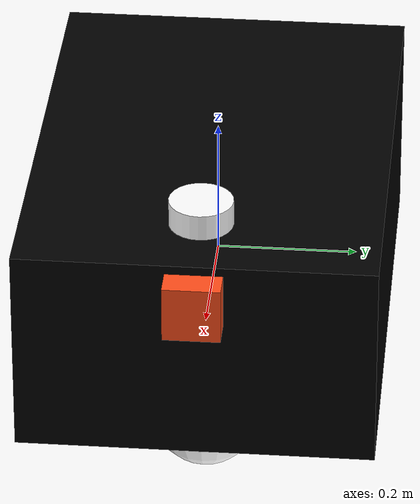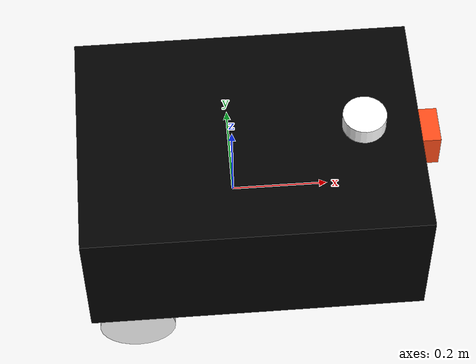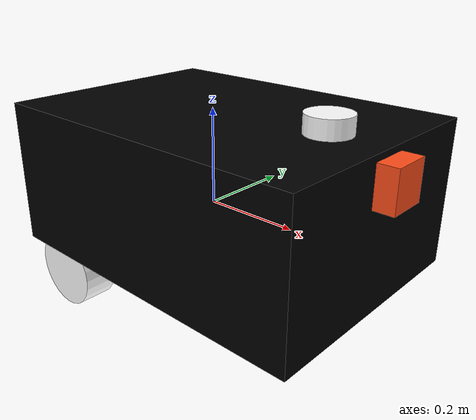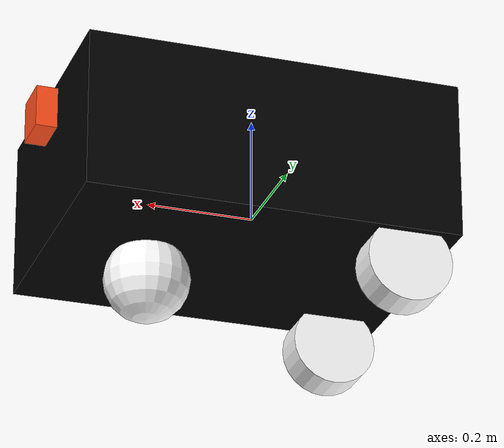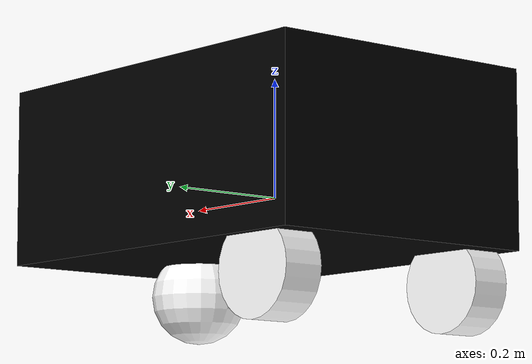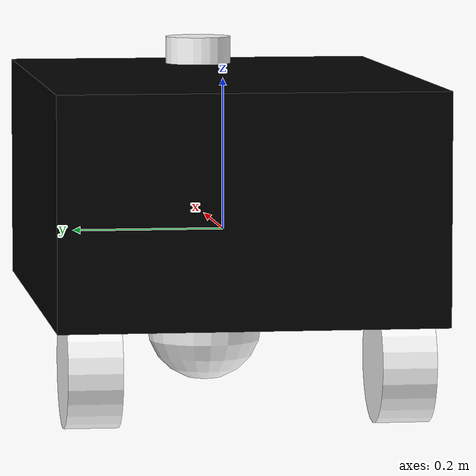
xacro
<?xml version="1.0"?>
<robot xmlns:xacro="http://www.ros.org/wiki/xacro"  name="robot">

    <xacro:include filename="robot_core.urdf.xacro" />

    <xacro:include filename="gazebo_control.xacro" />
    <xacro:include filename="camera.urdf.xacro" />

    <xacro:include filename="lidar.urdf.xacro" />

</robot>

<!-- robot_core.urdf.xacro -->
<robot xmlns:xacro="http://www.ros.org/wiki/xacro">

    <xacro:include filename="inertial.urdf.xacro"/>

    <material name="white">
        <color rgba="1 1 1 1" />
    </material>

    <material name="orange">
        <color rgba="1 0.3 0.1 1" />
    </material>

    <material name="blue">
        <color rgba="0.2 0.2 1 1" />
    </material>

    <material name="black">
        <color rgba="0 0 0 1" />
    </material>

<!--base link-->
    <link name="base_link">

    </link>
<!--BASE_FOOTPRINT LINK-->
    <joint name="base_footprint_joint" type="fixed">
        <parent link="base_link"/>
        <child link="base_footprint"/>
        <origin xyz="0 0 0" rpy="0 0 0"/>
    </joint>

    <link name="base_footprint">
    </link>

<!--chassis link-->

    <joint name="chassis_joint" type="fixed">
        <parent link="base_link"/>
        <child link="chassis"/>
        <origin xyz="-0.1 0 0"/>

    </joint>

    <link name="chassis">
        <visual>
            <origin xyz="0.135 0 0.052885"/>
            <geometry>
                <box size="0.7 0.5 0.3"/>
            </geometry>
            <material name="black"/>
        </visual>
        <collision>
            <origin xyz="0.135 0 0.052885"/>
            <geometry>
                <box size="0.7 0.5 0.3"/>
            </geometry>
        </collision>

        <xacro:inertial_box mass="30" x="0.27" y="0.168" z="0.10577">
            <origin xyz="0.135 0 0.052885" rpy="0 0 0"/>

        </xacro:inertial_box>

    </link>
    <gazebo reference="chassis">
        <material>Gazebo/Black</material>
    </gazebo>

<!--Left wheel link-->

    <joint name="left_wheel_joint" type="continuous">
        <parent link="base_link"/>
        <child link="left_wheel"/>
        <origin xyz="-0.22 0.2 -0.15" rpy="-${pi/2} 0 0"/>  <!-- we are rotating the whole bot 90 degrees wrt x axis..-->
        <axis xyz="0 0 1"/>
    </joint>

    <link name="left_wheel">
        <visual>
            <geometry>
                <cylinder radius="0.08" length="0.070"/>
            </geometry>
            <material name="white"/>
        </visual>
        <collision>
            <geometry>
                <sphere radius="0.08"/>
            </geometry>
        </collision>
        <xacro:inertial_cylinder mass="4" length="0.07" radius="0.08">
            <origin xyz = "0 0 0" rpy = "0 0 0 "/>
        </xacro:inertial_cylinder>
        </link>

        <gazebo reference="left_wheel">
            <material>Gazebo/White</material>
        </gazebo>

<!--Right wheel link-->

    <joint name="right_wheel_joint" type="continuous">
        <parent link="base_link"/>
        <child link="right_wheel"/>
        <origin xyz="-0.22 -0.2 -0.15" rpy="${pi/2} 0 0"/>  <!-- we are rotating the whole bot 90 degrees wrt x axis..-->
        <axis xyz="0 0 -1"/>
    </joint>

    <link name="right_wheel">
        <visual>
            <geometry>
                <cylinder radius="0.08" length="0.070"/>
            </geometry>
            <material name="white"/>
        </visual>
        <collision>
            <geometry>
                <sphere radius="0.08"/>
            </geometry>
            <material name="white"/>
        </collision>
        <xacro:inertial_cylinder mass="4" length="0.07" radius="0.08">
            <origin xyz = "0 0 0" rpy = "0 0 0 "/>
        </xacro:inertial_cylinder>
    </link>

    <gazebo reference="right_wheel">
        <material>Gazebo/White</material>
    </gazebo>

    <!--Caster wheel -->
    <joint name="caster_wheel_left_joint" type="fixed">
        <parent link="chassis"/>
        <child link="caster_wheel_left"/>
        <origin xyz="0.3 0 -0.15"/>
    </joint>

    <link name="caster_wheel_left">
        <visual>
            <geometry>
                <sphere radius="0.08"/>
            </geometry>
            <material name="white"/>
        </visual>
        <collision>
            <geometry>
                <sphere radius="0.08"/>
            </geometry>
            <material name="white"/>
        </collision>
        <xacro:inertial_sphere mass="5" radius="0.2">
            <origin xyz="0 0 0" rpy="0 0 0"/>
        </xacro:inertial_sphere>
    </link>
    <gazebo reference="caster_wheel_left">
        <material>Gazebo/White</material>
        <mu1 value="0.01"/>
        <mu2 value="0.01"/>

    </gazebo>

</robot>

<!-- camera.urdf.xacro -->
<robot xmlns:xacro="http://www.ros.org/wiki/xacro" >

    <joint name="camera_joint" type="fixed">
        <parent link="chassis"/>
        <child link="camera_link"/>
        <origin xyz="0.5 0 0.15" rpy="0 0 0"/>
    </joint>

    <link name="camera_link">
        <visual>
            <geometry>
                <box size="0.05 0.08 0.08"/>
            </geometry>
            <material name="orange"/>
        </visual>
    </link>

    <joint name="camera_optical_joint" type="fixed">
        <parent link="camera_link"/>
        <child link="camera_link_optical"/>
        <origin xyz="0 0 0" rpy="${-pi/2} 0 ${-pi/2}"/>
    </joint>

    <link name="camera_link_optical"></link>

    <gazebo reference="camera_link">
        <material>Gazebo/Orange</material>

        <sensor name="camera" type="camera">
            <pose> 0 0 0 0 0 0 </pose>
            <visualize>true</visualize>
            <update_rate>10</update_rate>
            <camera>
                <horizontal_fov>1.089</horizontal_fov>
                <image>
                    <format>R8G8B8</format>
                    <width>640</width>
                    <height>480</height>
                </image>
                <clip>
                    <near>0.05</near>
                    <far>8.0</far>
                </clip>
            </camera>
            <plugin name="camera_controller" filename="libgazebo_ros_camera.so">
                <frame_name>camera_link_optical</frame_name>
            </plugin>
        </sensor>
    </gazebo>

</robot>

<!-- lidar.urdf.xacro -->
<robot xmlns:xacro="http://www.ros.org/wiki/xacro" >

    <joint name="laser_joint" type="fixed">
        <parent link="chassis"/>
        <child link="laser_frame"/>
        <origin xyz="0.37 0 0.22" rpy="0 0 0"/>

    </joint>

    <link name="laser_frame">
        <visual>
            <geometry>
                <cylinder radius="0.045" length="0.04"/>
            </geometry>
            <material name="white"/>
        </visual>
        <collision>
            <geometry>
                <cylinder radius="0.045" length="0.04"/>
            </geometry>
        </collision>
        <xacro:inertial_cylinder mass="0.1" length="0.04" radius="0.035">
            <origin xyz = "0 0 0" rpy = "0 0 0 "/>
        </xacro:inertial_cylinder>
    </link>

     <gazebo reference="laser_frame">
        <material>Gazebo/White</material>

        <sensor name="laser" type="ray">
            <pose> 0 0 0 0 0 0 </pose>
            <visualize>true</visualize>
            <update_rate>10</update_rate>
            <ray>
                <scan>
                    <horizontal>
                        <samples>360</samples>
                        <min_angle>-3.14</min_angle>
                        <max_angle>3.14</max_angle>
                    </horizontal>
                </scan>
                <range>
                    <min>0.3</min>
                    <max>12</max>
                </range>
            </ray>
            <plugin name="laser_controller"
            filename="libgazebo_ros_ray_sensor.so">
                <ros>
                    <argument>~/out:=scan</argument>
                </ros>
                <output_type>sensor_msgs/LaserScan</output_type>
                <frame_name>laser_frame</frame_name>
            </plugin>
        </sensor>
    </gazebo>

</robot>
